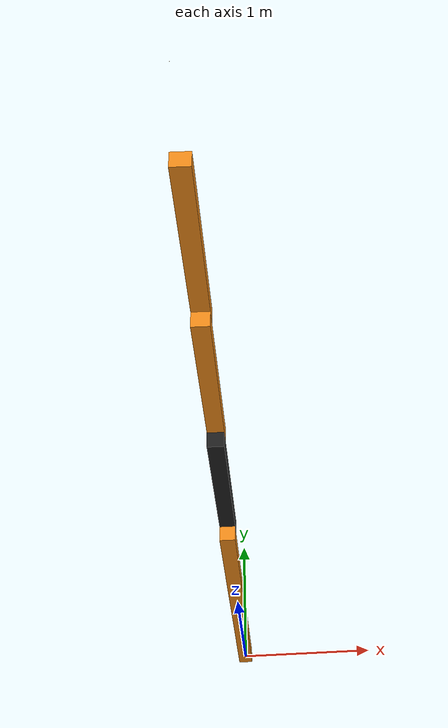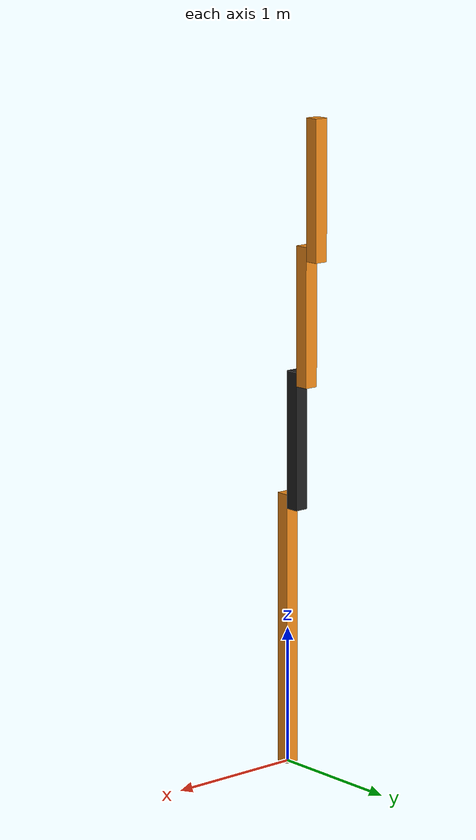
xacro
<?xml version="1.0"?>
<!-- Revolute-Revolute Manipulator -->
<robot name="rrbot" xmlns:xacro="http://www.ros.org/wiki/xacro">

  <!-- Constants for robot dimensions -->
  <xacro:property name="PI" value="3.1415926535897931"/>
  <xacro:property name="mass" value="1" /> <!-- arbitrary value for mass -->
  <xacro:property name="width" value="0.1" /> <!-- Square dimensions (widthxwidth) of beams -->
  <xacro:property name="height1" value="2" /> <!-- Link 1 -->
  <xacro:property name="height2" value="1" /> <!-- Link 2 -->
  <xacro:property name="height3" value="1" /> <!-- Link 3 -->
  <xacro:property name="camera_link" value="0.05" /> <!-- Size of square 'camera' box -->
  <xacro:property name="axel_offset" value="0.05" /> <!-- Space btw top of beam and the each joint -->

  <!-- Import all Gazebo-customization elements, including Gazebo colors -->
  <xacro:include filename="$(find rrbot_description)/urdf/rrbot.gazebo" />
  <!-- Import Rviz colors -->
  <xacro:include filename="$(find rrbot_description)/urdf/materials.xacro" />

  <!-- Used for fixing robot to Gazebo 'base_link' -->
  <link name="world"/>

  <joint name="fixed" type="fixed">
    <parent link="world"/>
    <child link="link1"/>
  </joint>

  <!-- Base Link -->
  <link name="link1">
    <collision>
      <origin xyz="0 0 ${height1/2}" rpy="0 0 0"/>
      <geometry>
	<box size="${width} ${width} ${height1}"/>
      </geometry>
    </collision>

    <visual>
      <origin xyz="0 0 ${height1/2}" rpy="0 0 0"/>
      <geometry>
	<box size="${width} ${width} ${height1}"/>
      </geometry>
      <material name="orange"/>
    </visual>

    <inertial>
      <origin xyz="0 0 ${height1/2}" rpy="0 0 0"/>
      <mass value="${mass}"/>
      <inertia
	  ixx="${mass / 12.0 * (width*width + height1*height1)}" ixy="0.0" ixz="0.0"
	  iyy="${mass / 12.0 * (height1*height1 + width*width)}" iyz="0.0"
	  izz="${mass / 12.0 * (width*width + width*width)}"/>
    </inertial>
  </link>

  <joint name="joint1" type="continuous">
    <parent link="link1"/>
    <child link="link2"/>
    <origin xyz="0 ${width} ${height1 - axel_offset}" rpy="0 0 0"/>
    <axis xyz="0 1 0"/>
    <dynamics damping="0.7"/>
 <limit effort="300" velocity="100.0"  />
  </joint>

  <!-- Middle Link -->
  <link name="link2">
    <collision>
      <origin xyz="0 0 ${height2/2 - axel_offset}" rpy="0 0 0"/>
      <geometry>
	<box size="${width} ${width} ${height2}"/>
      </geometry>
    </collision>

    <visual>
      <origin xyz="0 0 ${height2/2 - axel_offset}" rpy="0 0 0"/>
      <geometry>
	<box size="${width} ${width} ${height2}"/>
      </geometry>
      <material name="black"/>
    </visual>

    <inertial>
      <origin xyz="0 0 ${height2/2 - axel_offset}" rpy="0 0 0"/>
      <mass value="${mass}"/>
      <inertia
	  ixx="${mass / 12.0 * (width*width + height2*height2)}" ixy="0.0" ixz="0.0"
	  iyy="${mass / 12.0 * (height2*height2 + width*width)}" iyz="0.0"
	  izz="${mass / 12.0 * (width*width + width*width)}"/>
    </inertial>
  </link>

  <joint name="joint2" type="continuous">
    <parent link="link2"/>
    <child link="link3"/>
    <origin xyz="0 ${width} ${height2 - axel_offset*2}" rpy="0 0 0"/>
    <axis xyz="0 1 0"/>
    <dynamics damping="0.7"/>
<limit effort="300" velocity="100.0"  />
  </joint>

  <!-- Top Link -->
  <link name="link3">
    <collision>
      <origin xyz="0 0 ${height3/2 - axel_offset}" rpy="0 0 0"/>
      <geometry>
	<box size="${width} ${width} ${height3}"/>
      </geometry>
    </collision>

    <visual>
      <origin xyz="0 0 ${height3/2 - axel_offset}" rpy="0 0 0"/>
      <geometry>
	<box size="${width} ${width} ${height3}"/>
      </geometry>
      <material name="orange"/>
    </visual>

    <inertial>
      <origin xyz="0 0 ${height3/2 - axel_offset}" rpy="0 0 0"/>
      <mass value="${mass}"/>
      <inertia
	  ixx="${mass / 12.0 * (width*width + height3*height3)}" ixy="0.0" ixz="0.0"
	  iyy="${mass / 12.0 * (height3*height3 + width*width)}" iyz="0.0"
	  izz="${mass / 12.0 * (width*width + width*width)}"/>
    </inertial>
  </link>

<joint name="joint3" type="continuous">
    <parent link="link3"/>
    <child link="link4"/>
    <origin xyz="0 ${width} ${height2 - axel_offset*2}" rpy="0 0 0"/>
    <axis xyz="0 1 0"/>
    <dynamics damping="0.7"/>
<limit effort="300" velocity="100.0"  />
  </joint>

  <!-- Top Link -->
  <link name="link4">
    <collision>
      <origin xyz="0 0 ${height3/2 - axel_offset}" rpy="0 0 0"/>
      <geometry>
	<box size="${width} ${width} ${height3}"/>
      </geometry>
    </collision>

    <visual>
      <origin xyz="0 0 ${height3/2 - axel_offset}" rpy="0 0 0"/>
      <geometry>
	<box size="${width} ${width} ${height3}"/>
      </geometry>
      <material name="orange"/>
    </visual>

    <inertial>
      <origin xyz="0 0 ${height3/2 - axel_offset}" rpy="0 0 0"/>
      <mass value="${mass}"/>
      <inertia
	  ixx="${mass / 12.0 * (width*width + height3*height3)}" ixy="0.0" ixz="0.0"
	  iyy="${mass / 12.0 * (height3*height3 + width*width)}" iyz="0.0"
	  izz="${mass / 12.0 * (width*width + width*width)}"/>
    </inertial>
  </link>

<!-- Final link/End_eff -->

<joint name="joint4" type="fixed">
    <parent link="link4"/>
    <child link="e_e_link"/>
    <origin xyz="0 ${width} ${height2 - axel_offset*2}" rpy="0 0 0"/>
  </joint>

  <!-- Top Link -->
  <link name="e_e_link">
    <collision>
      <origin xyz="0 0 ${height3/2 - axel_offset}" rpy="0 0 0"/>
      <geometry>
	<box size="0.001 0.001 0.001"/>
      </geometry>
    </collision>

    <visual>
      <origin xyz="0 0 ${height3/2 - axel_offset}" rpy="0 0 0"/>
      <geometry>
	<box size="0.001 0.001 0.001"/>
      </geometry>
      <material name="orange"/>
    </visual>

    <inertial>
      <origin xyz="0 0 ${height3/2 - axel_offset}" rpy="0 0 0"/>
      <mass value="0"/>
      <inertia
	  ixx="0" ixy="0.0" ixz="0.0"
	  iyy="0" iyz="0.0"
	  izz="0"/>
    </inertial>
  </link>

 <transmission name="tran1">
    <type>transmission_interface/SimpleTransmission</type>
    <joint name="joint1">
      <hardwareInterface>PositionJointInterface</hardwareInterface>
    </joint>
    <actuator name="motor1">
      <hardwareInterface>PositionJointInterface</hardwareInterface>
      <mechanicalReduction>1</mechanicalReduction>
    </actuator>
  </transmission>

  <transmission name="tran2">
    <type>transmission_interface/SimpleTransmission</type>
    <joint name="joint2">
      <hardwareInterface>PositionJointInterface</hardwareInterface>
    </joint>
    <actuator name="motor2">
      <hardwareInterface>PositionJointInterface</hardwareInterface>
      <mechanicalReduction>1</mechanicalReduction>
    </actuator>
  </transmission>

 <transmission name="tran3">
    <type>transmission_interface/SimpleTransmission</type>
    <joint name="joint3">
      <hardwareInterface>PositionJointInterface</hardwareInterface>
    </joint>
    <actuator name="motor3">
      <hardwareInterface>PositionJointInterface</hardwareInterface>
      <mechanicalReduction>1</mechanicalReduction>
    </actuator>
  </transmission>

</robot>
